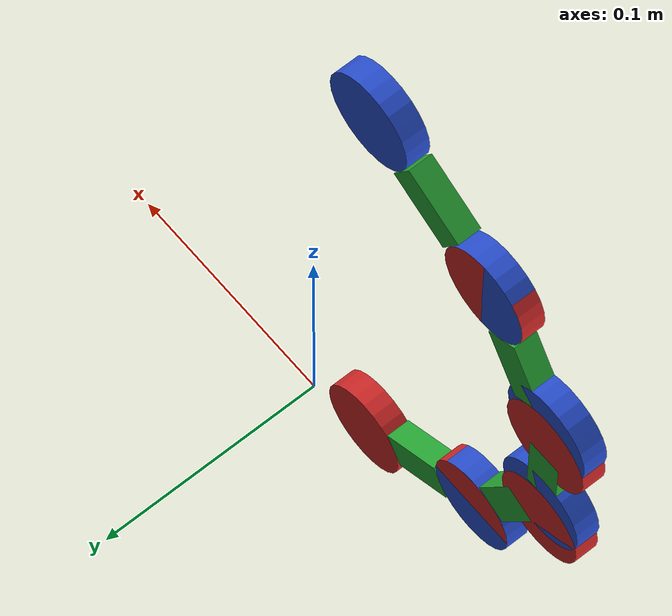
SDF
<?xml version="1.0"?>

<sdf version="1.4">

    <model name="chain_straight">

        <static>false</static>
        <pose>0 0 0.145 0 0 0</pose>

        <!--0.11 * sin 30, cos 30 -->
        <include>
            <uri>model://chain_link</uri>
            <pose>-0.0653 0 -0.1015 0 0.5236 0</pose>
            <name>chain_link_02</name>
        </include>

        <include>
            <uri>model://chain_link</uri>
            <pose>-0.1131 0 -0.0537 0 1.0472 0</pose>
            <name>chain_link_03</name>
        </include>

        <include>
            <uri>model://chain_link</uri>
            <pose>-0.1306 0 0 0 1.5708 0</pose>
            <name>chain_link_04</name>
        </include>

        <include>
            <uri>model://chain_link</uri>
            <pose>-0.1131 0 0.0537 0 2.0944 0</pose>
            <name>chain_link_05</name>
        </include>

        <include>
            <uri>model://chain_link</uri>
            <pose>-0.0653 0 0.1015 0 2.618 0</pose>
            <name>chain_link_06</name>
        </include>
        <joint name="rivet_02_03" type="revolute">
            <pose>0 0 0 0 0 0</pose>
            <child>chain_link_03::link_a</child>
            <parent>chain_link_02::link_b</parent>
            <axis>
                <limit>
                    <lower>-0</lower>
                    <upper>0</upper>
                </limit>
                <xyz>0 1 0</xyz>
            </axis>
        </joint>

        <joint name="rivet_03_04" type="revolute">
            <pose>0 0 0 0 0 0</pose>
            <child>chain_link_04::link_a</child>
            <parent>chain_link_03::link_b</parent>
            <axis>
                <limit>
                    <lower>-0</lower>
                    <upper>0</upper>
                </limit>
                <xyz>0 1 0</xyz>
            </axis>
        </joint>

        <joint name="rivet_04_05" type="revolute">
            <pose>0 0 0 0 0 0</pose>
            <child>chain_link_05::link_a</child>
            <parent>chain_link_04::link_b</parent>
            <axis>
                <limit>
                    <lower>-0</lower>
                    <upper>0</upper>
                </limit>
                <xyz>0 1 0</xyz>
            </axis>
        </joint>

        <joint name="rivet_05_06" type="revolute">
            <pose>0 0 0 0 0 0</pose>
            <child>chain_link_06::link_a</child>
            <parent>chain_link_05::link_b</parent>
            <axis>
                <limit>
                    <lower>-0</lower>
                    <upper>0</upper>
                </limit>
                <xyz>0 1 0</xyz>
            </axis>
        </joint>
    </model>
</sdf>

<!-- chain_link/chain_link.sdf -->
<sdf version="1.4">
    <model name="chain_link">
        <static>false</static>
        <pose>0 0 0.02 0 0 0</pose>

        <link name="link_a">
            <pose>-0.035 0 0 0 1.5707 1.5707</pose>
            <inertial>
                <pose>0 0 0 0 0 0</pose>
                <inertia>
                    <ixx>0.0001</ixx>
                    <ixy>0</ixy>
                    <ixz>0</ixz>
                    <iyy>0.0001</iyy>
                    <iyz>0</iyz>
                    <izz>0.0001</izz>
                </inertia>
                <mass>0.05</mass>
            </inertial>
            <collision name="link_a_collision">
                <geometry>
                    <cylinder>
                        <radius>.02</radius>
                        <length>.01</length>
                    </cylinder>
                </geometry>
                <surface>
                    <friction>
                        <ode>
                            <mu>10</mu>
                            <mu2>10</mu2>
                            <slip1>1.0</slip1>
                            <slip2>1.0</slip2>
                        </ode>
                    </friction>
                </surface>
            </collision>
            <visual name="link_a_visual">
                <geometry>
                    <cylinder>
                        <radius>.02</radius>
                        <length>.01</length>
                    </cylinder>
                </geometry>
                <material>
                    <script>
                        <uri>file://media/materials/scripts/gazebo.material</uri>
                        <name>Gazebo/Blue</name>
                    </script>
                </material>
            </visual>
        </link>
        <link name="link_b">
            <pose>0.035 0 0 0 1.5707 1.5707</pose>
            <inertial>
                <pose>0 0 0 0 0 0</pose>
                <inertia>
                    <ixx>0.0001</ixx>
                    <ixy>0</ixy>
                    <ixz>0</ixz>
                    <iyy>0.0001</iyy>
                    <iyz>0</iyz>
                    <izz>0.0001</izz>
                </inertia>
                <mass>0.05</mass>
            </inertial>
            <collision name="link_b_collision">
                <geometry>
                    <cylinder>
                        <radius>.02</radius>
                        <length>.01</length>
                    </cylinder>
                </geometry>
                <surface>
                    <friction>
                        <ode>
                            <mu>10</mu>
                            <mu2>10</mu2>
                            <slip1>1.0</slip1>
                            <slip2>1.0</slip2>
                        </ode>
                    </friction>
                </surface>
            </collision>
            <visual name="link_b_visual">
                <geometry>
                    <cylinder>
                        <radius>.02</radius>
                        <length>.01</length>
                    </cylinder>
                </geometry>
                <material>
                    <script>
                        <uri>file://media/materials/scripts/gazebo.material</uri>
                        <name>Gazebo/Red</name>
                    </script>
                </material>
            </visual>
        </link>
        <link name="link_c">
            <pose>0 0 0 0 0 0</pose>
            <inertial>
                <pose>0 0 0 0 0 0</pose>
                <inertia>
                    <ixx>0.0001</ixx>
                    <ixy>0</ixy>
                    <ixz>0</ixz>
                    <iyy>0.0001</iyy>
                    <iyz>0</iyz>
                    <izz>0.0001</izz>
                </inertia>
                <mass>0.05</mass>
            </inertial>
            <collision name="link_c_collision">
                <geometry>
                    <box>
                        <size>0.03 0.01 0.015</size>
                    </box>
                </geometry>
                <surface>
                    <friction>
                        <ode>
                            <mu>10</mu>
                            <mu2>10</mu2>
                            <slip1>1.0</slip1>
                            <slip2>1.0</slip2>
                        </ode>
                    </friction>
                </surface>
            </collision>
            <visual name="link_c_visual">
                <geometry>
                    <box>
                        <size>0.03 0.01 0.015</size>
                    </box>
                </geometry>
                <material>
                    <script>
                        <uri>file://media/materials/scripts/gazebo.material</uri>
                        <name>Gazebo/Green</name>
                    </script>
                </material>
            </visual>
        </link>

        <joint name="link_a_c" type="revolute">
            <pose>0 0 0 0 0 0</pose>
            <child>link_c</child>
            <parent>link_a</parent>
            <axis>
                <limit>
                    <lower>0</lower>
                    <upper>0</upper>
                </limit>
                <xyz>0 1 0</xyz>
            </axis>
        </joint>
        <joint name="link_b_c" type="revolute">
            <pose>0 0 0 0 0 0</pose>
            <child>link_c</child>
            <parent>link_b</parent>
            <axis>
                <limit>
                    <lower>0</lower>
                    <upper>0</upper>
                </limit>
                <xyz>0 1 0</xyz>
            </axis>
        </joint>

    </model>
</sdf>
